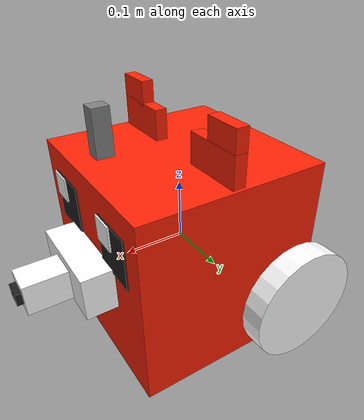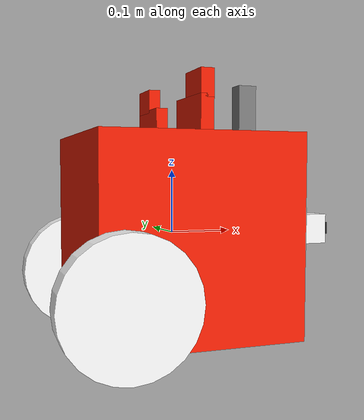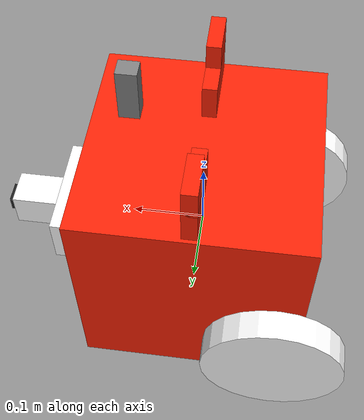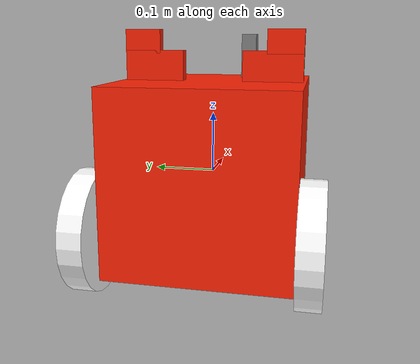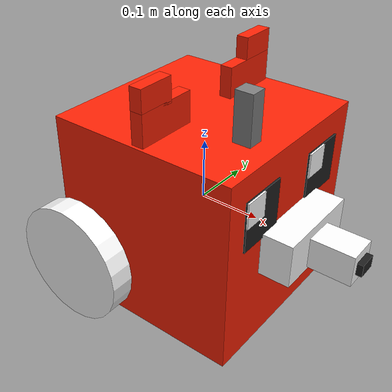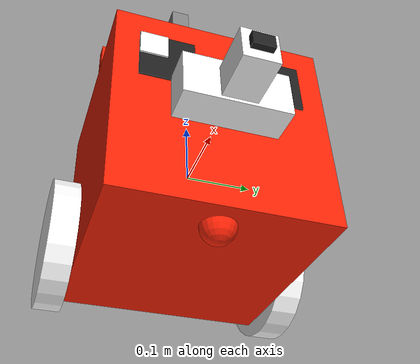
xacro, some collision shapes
<?xml version="1.0"?>
<robot name="foxy" xmlns:xacro="http://ros.org/wiki/xacro">
  <xacro:include filename="depth.urdf.xacro" />
  <xacro:include filename="gazebo.urdf.xacro" />

  <!-- Define robot constants -->
  <xacro:property name="base_width" value="0.31"/>
  <xacro:property name="base_length" value="0.31"/>
  <xacro:property name="base_height" value="0.31"/>

  <xacro:property name="ear_low_width" value="0.1"/>
  <xacro:property name="ear_low_length" value="0.02"/>
  <xacro:property name="ear_low_height" value="0.05"/>

  <xacro:property name="ear_high_width" value="0.06"/>
  <xacro:property name="ear_high_length" value="0.02"/>
  <xacro:property name="ear_high_height" value="0.04"/>

  <xacro:property name="eye_width" value="0.08"/>
  <xacro:property name="eye_length" value="0.005"/>
  <xacro:property name="eye_height" value="0.08"/>

  <xacro:property name="eye_reflect_width" value="0.04"/>
  <xacro:property name="eye_reflect_length" value="0.0025"/>
  <xacro:property name="eye_reflect_height" value="0.04"/>

  <xacro:property name="cheek_width" value="0.15"/>
  <xacro:property name="cheek_length" value="0.05"/>
  <xacro:property name="cheek_height" value="0.07"/>

  <xacro:property name="nose_long_width" value="0.05"/>
  <xacro:property name="nose_long_length" value="0.08"/>
  <xacro:property name="nose_long_height" value="0.05"/>

  <xacro:property name="nose_width" value="0.03"/>
  <xacro:property name="nose_length" value="0.01"/>
  <xacro:property name="nose_height" value="0.02"/>

  <xacro:property name="wheel_radius" value="0.10"/>
  <xacro:property name="wheel_width" value="0.04"/>
  <xacro:property name="wheel_ygap" value="0.02"/>
  <xacro:property name="wheel_zoff" value="0.08"/>
  <xacro:property name="wheel_xoff" value="0.12"/>

  <xacro:property name="caster_xoff" value="0.11"/>

  <material name="Orange">
    <color rgba="0.9921568627450981 0.13529411764705882 0.023529411764705882 1.0"/>
  </material>

  <material name="White">
    <color rgba="1. 1. 1.0 1.0"/>
  </material>

  <material name="Black">
    <ambient> 0. 0. 0.0 0.0"</ambient>
  </material>

  <!-- Define intertial property macros  -->
  <xacro:macro name="box_inertia" params="m w h d">
    <inertial>
      <origin xyz="0 0 0" rpy="${pi/2} 0 ${pi/2}"/>
      <mass value="${m}"/>
      <inertia ixx="${(m/12) * (h*h + d*d)}" ixy="0.0" ixz="0.0" iyy="${(m/12) * (w*w + d*d)}" iyz="0.0" izz="${(m/12) * (w*w + h*h)}"/>
    </inertial>
  </xacro:macro>

  <xacro:macro name="cylinder_inertia" params="m r h">
    <inertial>
      <origin xyz="0 0 0" rpy="${pi/2} 0 0" />
      <mass value="${m}"/>
      <inertia ixx="${(m/12) * (3*r*r + h*h)}" ixy = "0" ixz = "0" iyy="${(m/12) * (3*r*r + h*h)}" iyz = "0" izz="${(m/2) * (r*r)}"/>
    </inertial>
  </xacro:macro>

  <xacro:macro name="sphere_inertia" params="m r">
    <inertial>
      <mass value="${m}"/>
      <inertia ixx="${(2/5) * m * (r*r)}" ixy="0.0" ixz="0.0" iyy="${(2/5) * m * (r*r)}" iyz="0.0" izz="${(2/5) * m * (r*r)}"/>
    </inertial>
  </xacro:macro>

  <!-- Robot Base -->
  <link name="base_link">
    <visual>
      <geometry>
        <box size="${base_length} ${base_width} ${base_height}"/>
      </geometry>
      <material name="Orange"/>
    </visual>

    <collision>
      <geometry>
        <box size="${base_length} ${base_width} ${base_height}"/>
      </geometry>
    </collision>

    <xacro:box_inertia m="15" w="${base_width}" d="${base_length}" h="${base_height}"/>
  </link>

  <!-- Robot Footprint -->
  <link name="base_footprint"/>

  <joint name="base_joint" type="fixed">
    <parent link="base_link"/>
    <child link="base_footprint"/>
    <origin xyz="0.0 0.0 ${-(wheel_radius+wheel_zoff)}" rpy="0 0 0"/>
  </joint>

  <!-- Ears -->
  <xacro:macro name="ear_low" params="prefix y_reflect">
    <link name="${prefix}_ear_low">
      <visual>
        <geometry>
          <box size="${ear_low_length} ${ear_low_width} ${ear_low_height}"/>
        </geometry>
        <material name="Orange"/>
      </visual>

      <collision>
        <geometry>
          <box size="${ear_low_length} ${ear_low_width} ${ear_low_height}"/>
        </geometry>
      </collision>

      <xacro:box_inertia m="0.1" w="${ear_low_width}" d="${ear_low_length}" h="${ear_low_height}"/>
    </link>

    <joint name="${prefix}_ear_low_joint" type="fixed">
      <parent link="base_link"/>
      <child link="${prefix}_ear_low"/>
      <origin xyz="0.0 ${y_reflect*0.1} ${-(wheel_radius+wheel_zoff-base_height-ear_low_height)}" rpy="0 0 0"/>
    </joint>
  </xacro:macro>

  <xacro:ear_low prefix="right" y_reflect="1" />
  <xacro:ear_low prefix="left" y_reflect="-1" />

  <xacro:macro name="ear_high" params="prefix y_reflect">
    <link name="${prefix}_ear_high">
      <visual>
        <geometry>
          <box size="${ear_high_length} ${ear_high_width} ${ear_high_height}"/>
        </geometry>
        <material name="Orange"/>
      </visual>

      <collision>
        <geometry>
          <box size="${ear_high_length} ${ear_high_width} ${ear_high_height}"/>
        </geometry>
      </collision>

      <xacro:box_inertia m="0.1" w="${ear_high_width}" d="${ear_high_length}" h="${ear_high_height}"/>
    </link>

    <joint name="${prefix}_ear_high_joint" type="fixed">
      <parent link="base_link"/>
      <child link="${prefix}_ear_high"/>
      <origin xyz="0.0 ${y_reflect*(0.1+0.02)} ${-(wheel_radius+wheel_zoff-base_height-ear_high_height-ear_low_height)}" rpy="0 0 0"/>
    </joint>
  </xacro:macro>

  <xacro:ear_high prefix="right" y_reflect="1" />
  <xacro:ear_high prefix="left" y_reflect="-1" />

  <!-- Eyes -->
  <xacro:macro name="eye" params="prefix y_reflect">
    <link name="${prefix}_eye">
      <visual>
        <geometry>
          <box size="${eye_length} ${eye_width} ${eye_height}"/>
        </geometry>
        <material name="Black"/>
      </visual>

      <collision>
        <geometry>
          <box size="${eye_length} ${eye_width} ${eye_height}"/>
        </geometry>
      </collision>

      <xacro:box_inertia m="0.01" w="${eye_width}" d="${eye_length}" h="${eye_height}"/>
    </link>

    <joint name="${prefix}_eye_joint" type="fixed">
      <parent link="base_link"/>
      <child link="${prefix}_eye"/>
      <origin xyz="${base_height/2} ${y_reflect*0.08} ${-(wheel_radius+wheel_zoff-base_height/2-0.1)}" rpy="0 0 0"/>
    </joint>
  </xacro:macro>

  <xacro:eye prefix="right" y_reflect="1" />
  <xacro:eye prefix="left" y_reflect="-1" />

  <xacro:macro name="eye_reflect" params="prefix y_reflect">
    <link name="${prefix}_eye_reflect">
      <visual>
        <geometry>
          <box size="${eye_reflect_length} ${eye_reflect_width} ${eye_reflect_height}"/>
        </geometry>
        <material name="White"/>
      </visual>

      <collision>
        <geometry>
          <box size="${eye_reflect_length} ${eye_reflect_width} ${eye_reflect_height}"/>
        </geometry>
      </collision>

      <xacro:box_inertia m="0.01" w="${eye_reflect_width}" d="${eye_reflect_length}" h="${eye_reflect_height}"/>
    </link>

    <joint name="${prefix}_eye_reflect_joint" type="fixed">
      <parent link="base_link"/>
      <child link="${prefix}_eye_reflect"/>
      <origin xyz="${base_height/2+(eye_reflect_length+eye_length)/2} ${-(0.08+0.02)+(y_reflect*(0.08+0.02+0.06))} ${-(wheel_radius+wheel_zoff-base_height/2-0.12)}" rpy="0 0 0"/>
    </joint>
  </xacro:macro>

  <xacro:eye_reflect prefix="right" y_reflect="1" />
  <xacro:eye_reflect prefix="left" y_reflect="0" />

  <!-- Cheek -->

  <link name="cheek_big">
    <visual>
      <geometry>
        <box size="${cheek_length} ${cheek_width} ${cheek_height}"/>
      </geometry>
      <material name="White"/>
    </visual>

    <collision>
      <geometry>
        <box size="${cheek_length} ${cheek_width} ${cheek_height}"/>
      </geometry>
    </collision>

    <xacro:box_inertia m="0.01" w="${cheek_width}" d="${cheek_length}" h="${cheek_height}"/>
  </link>

  <joint name="cheek_big_joint" type="fixed">
    <parent link="base_link"/>
    <child link="cheek_big"/>
    <origin xyz="${base_height/2+cheek_length/2} 0. ${-(wheel_radius+wheel_zoff-base_height/2-0.03)}" rpy="0 0 0"/>
  </joint>

  <!-- Nose -->

  <link name="nose_long">
    <visual>
      <geometry>
        <box size="${nose_long_length} ${nose_long_width} ${nose_long_height}"/>
      </geometry>
      <material name="White"/>
    </visual>

    <collision>
      <geometry>
        <box size="${nose_long_length} ${nose_long_width} ${nose_long_height}"/>
      </geometry>
    </collision>

    <xacro:box_inertia m="0.01" w="${nose_long_width}" d="${nose_long_length}" h="${nose_long_height}"/>
  </link>

  <joint name="nose_long_joint" type="fixed">
    <parent link="base_link"/>
    <child link="nose_long"/>
    <origin xyz="${base_height/2+cheek_length/2+nose_long_length/1.5} 0. ${-(wheel_radius+wheel_zoff-base_height/2-0.025)}" rpy="0 0 0"/>
  </joint>

  <link name="nose">
    <visual>
      <geometry>
        <box size="${nose_length} ${nose_width} ${nose_height}"/>
      </geometry>
      <material name="Black"/>
    </visual>

    <collision>
      <geometry>
        <box size="${nose_length} ${nose_width} ${nose_height}"/>
      </geometry>
    </collision>

    <xacro:box_inertia m="0.01" w="${nose_width}" d="${nose_length}" h="${nose_height}"/>
  </link>

  <joint name="nose_joint" type="fixed">
    <parent link="base_link"/>
    <child link="nose"/>
    <origin xyz="${base_height/2+cheek_length/2+nose_long_length+nose_length*2-0.002} 0. ${-(wheel_radius+wheel_zoff-base_height/2-0.025)}" rpy="0 0 0"/>
  </joint>

  <!-- Wheels -->
  <xacro:macro name="wheel" params="prefix x_reflect y_reflect">
    <link name="${prefix}_link">
      <visual>
        <origin xyz="0 0 0" rpy="${pi/2} 0 0"/>
        <geometry>
            <cylinder radius="${wheel_radius}" length="${wheel_width}"/>
        </geometry>
        <material name="White"/>
      </visual>

      <collision>
        <origin xyz="0 0 0" rpy="${pi/2} 0 0"/>
        <geometry>
          <cylinder radius="${wheel_radius}" length="${wheel_width}"/>
        </geometry>
      </collision>

      <xacro:cylinder_inertia m="0.5" r="${wheel_radius}" h="${wheel_width}"/>
    </link>

    <joint name="${prefix}_joint" type="continuous">
      <parent link="base_link"/>
      <child link="${prefix}_link"/>
      <origin xyz="${x_reflect*wheel_xoff} ${y_reflect*(base_width/2+wheel_ygap)} ${-wheel_zoff}" rpy="0 0 0"/>
      <axis xyz="0 1 0"/>
    </joint>
  </xacro:macro>

  <xacro:wheel prefix="left_wheel" x_reflect="-1" y_reflect="1" />
  <xacro:wheel prefix="right_wheel" x_reflect="-1" y_reflect="-1" />

  <xacro:property name="radius_caster" value="${(wheel_radius+wheel_zoff-(base_height/2))}"/>

  <!-- Caster Wheel -->
  <link name="front_caster">
    <visual>
      <geometry>
        <sphere radius="${radius_caster}"/>
      </geometry>
      <material name="Orange"/>
    </visual>

    <collision>
      <origin xyz="0 0 0" rpy="0 0 0"/>
      <geometry>
        <sphere radius="${radius_caster}"/>
      </geometry>
    </collision>

    <xacro:sphere_inertia m="0.1" r="${radius_caster}"/>
  </link>

  <joint name="caster_joint" type="continuous">
    <parent link="base_link"/>
    <child link="front_caster"/>
    <origin xyz="${caster_xoff} 0.0 ${-(base_height/2)}" rpy="0 0 0"/>
  </joint>

  <gazebo reference="front_caster">
      <material>Orange</material>
      <mu1 value="0.001"/>
      <mu2 value="0.001"/>
  </gazebo>

</robot>

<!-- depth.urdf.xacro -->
<robot xmlns:xacro="http://www.ros.org/wiki/xacro">

    <xacro:property name="M_PI" value="3.1415926535897931" />

    <joint name="depth_joint" type="fixed">
        <parent link="base_link"/>
        <child link="depth_frame"/>
        <origin xyz="0.1 0 0.17" rpy="0 0.0 0"/>
    </joint>

    <material name="aluminum">
      <color rgba="0.5 0.5 0.5 1"/>
    </material>

    <link name="depth_frame">
        <visual>
            <origin xyz="0.00465 -0.0475 0" rpy="${M_PI/2} 0 ${M_PI/2}"/>
            <geometry>
                <mesh filename="file://$(find circle_movement)/description/d455.stl" scale="0.001 0.001 0.001"/>
                <!--box size="0.026 0.124 0.029"/-->
            </geometry>
            <material name="aluminum"/>
        </visual>
        <collision>
            <origin xyz="0.00465 -0.0475 0" rpy="${M_PI/2} 0 ${M_PI/2}"/>
            <geometry>
                <box size="0.026 0.124 0.029"/>
            </geometry>
        </collision>
        <inertial>
            <origin xyz="0 0 0" rpy="0 0 0"/>
            <mass value="0.116" />
            <inertia ixx="${(1/12) * 0.116 * (0.026*0.026+0.029*0.029)}" ixy="0.0" ixz="0.0"
                     iyy="${(1/12) * 0.116 * (0.124*0.124+0.029*0.029)}" iyz="0.0"
                     izz="${(1/12) * 0.116 * (0.124*0.124+0.026*0.026)}" />
        </inertial>
    </link>

    <gazebo reference="depth_frame">
        <sensor name='depth_sensor_frame' type='depth_camera'>"
            <gz_frame_id>fox/depth_frame</gz_frame_id>
            <pose> 0 0 0 0 0 0 </pose>
            <always_on>true</always_on>
            <update_rate>10</update_rate>
            <camera>
                <horizontal_fov>1.51843645</horizontal_fov>
                <image>
                    <width>848</width>
                    <height>480</height>
                    <format>R_FLOAT32</format>
                </image>
                <clip>
                    <near>0.1</near>
                    <far>10</far>
                </clip>
                <lens>
                    <intrinsics>
                    <fx>421.61578369140625</fx>
                    <fy>421.61578369140625</fy>
                    <cx>422.2854309082031</cx>
                    <cy>236.57237243652344</cy>
                    <s>0</s>
                    </intrinsics>
                </lens>
                <noise>
                    <type>gaussian</type>
                    <mean>0.0</mean>
                    <stddev>0.007</stddev>
                </noise>
            </camera>
        </sensor>
        <sensor name="color_sensor_frame" type="camera">
            <gz_frame_id>fox/depth_frame</gz_frame_id>
            <pose>0 0 0 0 0 0</pose>
            <update_rate>30</update_rate>
            <always_on>true</always_on>
            <camera>
                <horizontal_fov>1.20427718</horizontal_fov>
                <image>
                    <width>848</width>
                    <height>480</height>
                </image>
                <clip>
                    <near>0.1</near>
                    <far>50</far>
                </clip>
                <lens>
                    <intrinsics>
                    <fx>615.9603271484375</fx>
                    <fy>616.227294921875</fy>
                    <cx>419.83026123046875</cx>
                    <cy>245.1431427001953</cy>
                    <s>0</s>
                    </intrinsics>
                </lens>
            </camera>
        </sensor>
    </gazebo>
</robot>
